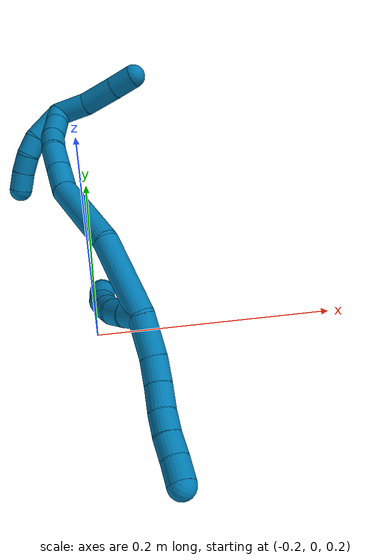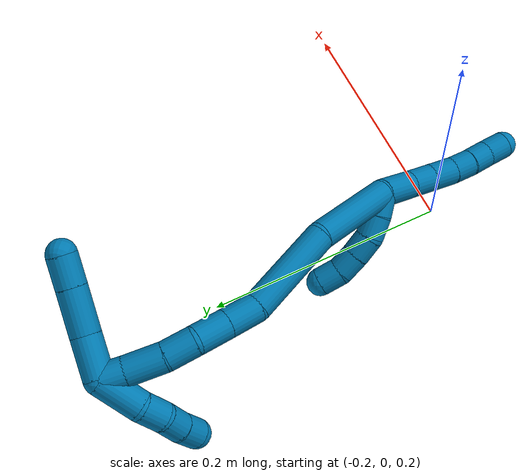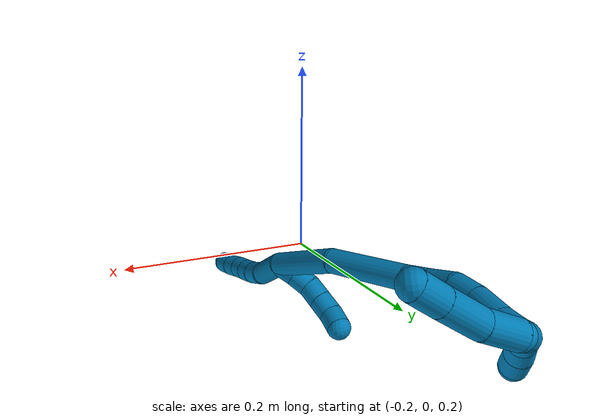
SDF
<sdf version="1.7">
 <world name="default">
  <model name="9">
   <static>0</static>
   <link name="9">
    <collision name="collision-cylinder-e_1_2_8">
     <pose>-0.006853 -0.011613 -0.014226 2.45698 -0.357152 -0.937743</pose>
     <geometry><cylinder><radius>0.0125</radius><length>0.039202</length></cylinder></geometry>
     <surface>
      <friction><ode><mu>1.16</mu><mu2>1.16</mu2><slip1>0</slip1><slip2>0</slip2></ode></friction>
      <contact><ode><kp>1e+06</kp><kd>1</kd><max_vel>0</max_vel><min_depth>0.001</min_depth></ode></contact>
     </surface>
    </collision>
    <visual name="visual-cylinder-e_1_2_8">
     <pose>-0.006853 -0.011613 -0.014226 2.45698 -0.357152 -0.937743</pose>
     <geometry><cylinder><radius>0.0125</radius><length>0.039202</length></cylinder></geometry>
     <material><ambient>0 0.490196 0.709804 1</ambient></material>
    </visual>
    <collision name="collision-cylinder-e_2_8_9">
     <pose>-0.015113 -0.032586 -0.036569 2.28513 -0.113104 -0.246778</pose>
     <geometry><cylinder><radius>0.0125</radius><length>0.024938</length></cylinder></geometry>
     <surface>
      <friction><ode><mu>1.16</mu><mu2>1.16</mu2><slip1>0</slip1><slip2>0</slip2></ode></friction>
      <contact><ode><kp>1e+06</kp><kd>1</kd><max_vel>0</max_vel><min_depth>0.001</min_depth></ode></contact>
     </surface>
    </collision>
    <visual name="visual-cylinder-e_2_8_9">
     <pose>-0.015113 -0.032586 -0.036569 2.28513 -0.113104 -0.246778</pose>
     <geometry><cylinder><radius>0.0125</radius><length>0.024938</length></cylinder></geometry>
     <material><ambient>0 0.490196 0.709804 1</ambient></material>
    </visual>
    <collision name="collision-cylinder-e_3_9_10">
     <pose>-0.016909 -0.051366 -0.05205 2.23441 -0.032536 -0.066722</pose>
     <geometry><cylinder><radius>0.0125</radius><length>0.023926</length></cylinder></geometry>
     <surface>
      <friction><ode><mu>1.16</mu><mu2>1.16</mu2><slip1>0</slip1><slip2>0</slip2></ode></friction>
      <contact><ode><kp>1e+06</kp><kd>1</kd><max_vel>0</max_vel><min_depth>0.001</min_depth></ode></contact>
     </surface>
    </collision>
    <visual name="visual-cylinder-e_3_9_10">
     <pose>-0.016909 -0.051366 -0.05205 2.23441 -0.032536 -0.066722</pose>
     <geometry><cylinder><radius>0.0125</radius><length>0.023926</length></cylinder></geometry>
     <material><ambient>0 0.490196 0.709804 1</ambient></material>
    </visual>
    <collision name="collision-cylinder-e_4_10_11">
     <pose>-0.016854 -0.068473 -0.066168 2.29154 0.043348 0.095714</pose>
     <geometry><cylinder><radius>0.0125</radius><length>0.020486</length></cylinder></geometry>
     <surface>
      <friction><ode><mu>1.16</mu><mu2>1.16</mu2><slip1>0</slip1><slip2>0</slip2></ode></friction>
      <contact><ode><kp>1e+06</kp><kd>1</kd><max_vel>0</max_vel><min_depth>0.001</min_depth></ode></contact>
     </surface>
    </collision>
    <visual name="visual-cylinder-e_4_10_11">
     <pose>-0.016854 -0.068473 -0.066168 2.29154 0.043348 0.095714</pose>
     <geometry><cylinder><radius>0.0125</radius><length>0.020486</length></cylinder></geometry>
     <material><ambient>0 0.490196 0.709804 1</ambient></material>
    </visual>
    <collision name="collision-cylinder-e_5_11_12">
     <pose>-0.01616 -0.082999 -0.080217 2.38861 0.025053 0.06335</pose>
     <geometry><cylinder><radius>0.0125</radius><length>0.020005</length></cylinder></geometry>
     <surface>
      <friction><ode><mu>1.16</mu><mu2>1.16</mu2><slip1>0</slip1><slip2>0</slip2></ode></friction>
      <contact><ode><kp>1e+06</kp><kd>1</kd><max_vel>0</max_vel><min_depth>0.001</min_depth></ode></contact>
     </surface>
    </collision>
    <visual name="visual-cylinder-e_5_11_12">
     <pose>-0.01616 -0.082999 -0.080217 2.38861 0.025053 0.06335</pose>
     <geometry><cylinder><radius>0.0125</radius><length>0.020005</length></cylinder></geometry>
     <material><ambient>0 0.490196 0.709804 1</ambient></material>
    </visual>
    <collision name="collision-cylinder-e_6_12_6">
     <pose>-0.015035 -0.09756 -0.0949 2.33392 0.081613 0.190513</pose>
     <geometry><cylinder><radius>0.0125</radius><length>0.021443</length></cylinder></geometry>
     <surface>
      <friction><ode><mu>1.16</mu><mu2>1.16</mu2><slip1>0</slip1><slip2>0</slip2></ode></friction>
      <contact><ode><kp>1e+06</kp><kd>1</kd><max_vel>0</max_vel><min_depth>0.001</min_depth></ode></contact>
     </surface>
    </collision>
    <visual name="visual-cylinder-e_6_12_6">
     <pose>-0.015035 -0.09756 -0.0949 2.33392 0.081613 0.190513</pose>
     <geometry><cylinder><radius>0.0125</radius><length>0.021443</length></cylinder></geometry>
     <material><ambient>0 0.490196 0.709804 1</ambient></material>
    </visual>
    <collision name="collision-cylinder-e_1_2_13">
     <pose>-0.006621 0.000152 0.007492 -0.02024 -0.723643 0.007661</pose>
     <geometry><cylinder><radius>0.0125</radius><length>0.02</length></cylinder></geometry>
     <surface>
      <friction><ode><mu>1.16</mu><mu2>1.16</mu2><slip1>0</slip1><slip2>0</slip2></ode></friction>
      <contact><ode><kp>1e+06</kp><kd>1</kd><max_vel>0</max_vel><min_depth>0.001</min_depth></ode></contact>
     </surface>
    </collision>
    <visual name="visual-cylinder-e_1_2_13">
     <pose>-0.006621 0.000152 0.007492 -0.02024 -0.723643 0.007661</pose>
     <geometry><cylinder><radius>0.0125</radius><length>0.02</length></cylinder></geometry>
     <material><ambient>0 0.490196 0.709804 1</ambient></material>
    </visual>
    <collision name="collision-cylinder-e_2_13_14">
     <pose>-0.020058 0.001821 0.022143 -0.208863 -0.74991 0.082457</pose>
     <geometry><cylinder><radius>0.0125</radius><length>0.02</length></cylinder></geometry>
     <surface>
      <friction><ode><mu>1.16</mu><mu2>1.16</mu2><slip1>0</slip1><slip2>0</slip2></ode></friction>
      <contact><ode><kp>1e+06</kp><kd>1</kd><max_vel>0</max_vel><min_depth>0.001</min_depth></ode></contact>
     </surface>
    </collision>
    <visual name="visual-cylinder-e_2_13_14">
     <pose>-0.020058 0.001821 0.022143 -0.208863 -0.74991 0.082457</pose>
     <geometry><cylinder><radius>0.0125</radius><length>0.02</length></cylinder></geometry>
     <material><ambient>0 0.490196 0.709804 1</ambient></material>
    </visual>
    <collision name="collision-cylinder-e_3_14_15">
     <pose>-0.033984 0.007666 0.034844 -0.663 -0.790966 0.28544</pose>
     <geometry><cylinder><radius>0.0125</radius><length>0.02</length></cylinder></geometry>
     <surface>
      <friction><ode><mu>1.16</mu><mu2>1.16</mu2><slip1>0</slip1><slip2>0</slip2></ode></friction>
      <contact><ode><kp>1e+06</kp><kd>1</kd><max_vel>0</max_vel><min_depth>0.001</min_depth></ode></contact>
     </surface>
    </collision>
    <visual name="visual-cylinder-e_3_14_15">
     <pose>-0.033984 0.007666 0.034844 -0.663 -0.790966 0.28544</pose>
     <geometry><cylinder><radius>0.0125</radius><length>0.02</length></cylinder></geometry>
     <material><ambient>0 0.490196 0.709804 1</ambient></material>
    </visual>
    <collision name="collision-cylinder-e_4_15_16">
     <pose>-0.047658 0.01713 0.045911 -0.748899 -0.71603 0.291974</pose>
     <geometry><cylinder><radius>0.0125</radius><length>0.02</length></cylinder></geometry>
     <surface>
      <friction><ode><mu>1.16</mu><mu2>1.16</mu2><slip1>0</slip1><slip2>0</slip2></ode></friction>
      <contact><ode><kp>1e+06</kp><kd>1</kd><max_vel>0</max_vel><min_depth>0.001</min_depth></ode></contact>
     </surface>
    </collision>
    <visual name="visual-cylinder-e_4_15_16">
     <pose>-0.047658 0.01713 0.045911 -0.748899 -0.71603 0.291974</pose>
     <geometry><cylinder><radius>0.0125</radius><length>0.02</length></cylinder></geometry>
     <material><ambient>0 0.490196 0.709804 1</ambient></material>
    </visual>
    <collision name="collision-cylinder-e_5_16_5">
     <pose>-0.059128 0.02981 0.055799 -1.04655 -0.51275 0.300195</pose>
     <geometry><cylinder><radius>0.0125</radius><length>0.02</length></cylinder></geometry>
     <surface>
      <friction><ode><mu>1.16</mu><mu2>1.16</mu2><slip1>0</slip1><slip2>0</slip2></ode></friction>
      <contact><ode><kp>1e+06</kp><kd>1</kd><max_vel>0</max_vel><min_depth>0.001</min_depth></ode></contact>
     </surface>
    </collision>
    <visual name="visual-cylinder-e_5_16_5">
     <pose>-0.059128 0.02981 0.055799 -1.04655 -0.51275 0.300195</pose>
     <geometry><cylinder><radius>0.0125</radius><length>0.02</length></cylinder></geometry>
     <material><ambient>0 0.490196 0.709804 1</ambient></material>
    </visual>
    <collision name="collision-cylinder-e_1_2_17">
     <pose>0.004078 0.022598 0.033554 -0.5927 0.100466 -0.0307</pose>
     <geometry><cylinder><radius>0.0125</radius><length>0.081318</length></cylinder></geometry>
     <surface>
      <friction><ode><mu>1.16</mu><mu2>1.16</mu2><slip1>0</slip1><slip2>0</slip2></ode></friction>
      <contact><ode><kp>1e+06</kp><kd>1</kd><max_vel>0</max_vel><min_depth>0.001</min_depth></ode></contact>
     </surface>
    </collision>
    <visual name="visual-cylinder-e_1_2_17">
     <pose>0.004078 0.022598 0.033554 -0.5927 0.100466 -0.0307</pose>
     <geometry><cylinder><radius>0.0125</radius><length>0.081318</length></cylinder></geometry>
     <material><ambient>0 0.490196 0.709804 1</ambient></material>
    </visual>
    <collision name="collision-cylinder-e_2_17_18">
     <pose>0.000768 0.064373 0.103217 -0.488217 -0.178771 0.044639</pose>
     <geometry><cylinder><radius>0.0125</radius><length>0.083096</length></cylinder></geometry>
     <surface>
      <friction><ode><mu>1.16</mu><mu2>1.16</mu2><slip1>0</slip1><slip2>0</slip2></ode></friction>
      <contact><ode><kp>1e+06</kp><kd>1</kd><max_vel>0</max_vel><min_depth>0.001</min_depth></ode></contact>
     </surface>
    </collision>
    <visual name="visual-cylinder-e_2_17_18">
     <pose>0.000768 0.064373 0.103217 -0.488217 -0.178771 0.044639</pose>
     <geometry><cylinder><radius>0.0125</radius><length>0.083096</length></cylinder></geometry>
     <material><ambient>0 0.490196 0.709804 1</ambient></material>
    </visual>
    <collision name="collision-cylinder-e_3_18_19">
     <pose>-0.006852 0.093504 0.14972 -0.763778 -0.016109 0.00647</pose>
     <geometry><cylinder><radius>0.0125</radius><length>0.028785</length></cylinder></geometry>
     <surface>
      <friction><ode><mu>1.16</mu><mu2>1.16</mu2><slip1>0</slip1><slip2>0</slip2></ode></friction>
      <contact><ode><kp>1e+06</kp><kd>1</kd><max_vel>0</max_vel><min_depth>0.001</min_depth></ode></contact>
     </surface>
    </collision>
    <visual name="visual-cylinder-e_3_18_19">
     <pose>-0.006852 0.093504 0.14972 -0.763778 -0.016109 0.00647</pose>
     <geometry><cylinder><radius>0.0125</radius><length>0.028785</length></cylinder></geometry>
     <material><ambient>0 0.490196 0.709804 1</ambient></material>
    </visual>
    <collision name="collision-cylinder-e_4_19_20">
     <pose>-0.006893 0.113264 0.170418 -0.760631 0.013404 -0.005359</pose>
     <geometry><cylinder><radius>0.0125</radius><length>0.028453</length></cylinder></geometry>
     <surface>
      <friction><ode><mu>1.16</mu><mu2>1.16</mu2><slip1>0</slip1><slip2>0</slip2></ode></friction>
      <contact><ode><kp>1e+06</kp><kd>1</kd><max_vel>0</max_vel><min_depth>0.001</min_depth></ode></contact>
     </surface>
    </collision>
    <visual name="visual-cylinder-e_4_19_20">
     <pose>-0.006893 0.113264 0.170418 -0.760631 0.013404 -0.005359</pose>
     <geometry><cylinder><radius>0.0125</radius><length>0.028453</length></cylinder></geometry>
     <material><ambient>0 0.490196 0.709804 1</ambient></material>
    </visual>
    <collision name="collision-cylinder-e_5_20_21">
     <pose>-0.010081 0.132844 0.188242 -0.914972 -0.267408 0.132248</pose>
     <geometry><cylinder><radius>0.0125</radius><length>0.025571</length></cylinder></geometry>
     <surface>
      <friction><ode><mu>1.16</mu><mu2>1.16</mu2><slip1>0</slip1><slip2>0</slip2></ode></friction>
      <contact><ode><kp>1e+06</kp><kd>1</kd><max_vel>0</max_vel><min_depth>0.001</min_depth></ode></contact>
     </surface>
    </collision>
    <visual name="visual-cylinder-e_5_20_21">
     <pose>-0.010081 0.132844 0.188242 -0.914972 -0.267408 0.132248</pose>
     <geometry><cylinder><radius>0.0125</radius><length>0.025571</length></cylinder></geometry>
     <material><ambient>0 0.490196 0.709804 1</ambient></material>
    </visual>
    <collision name="collision-cylinder-e_6_21_22">
     <pose>-0.017986 0.156448 0.202992 -1.08916 -0.282338 0.171726</pose>
     <geometry><cylinder><radius>0.0125</radius><length>0.032501</length></cylinder></geometry>
     <surface>
      <friction><ode><mu>1.16</mu><mu2>1.16</mu2><slip1>0</slip1><slip2>0</slip2></ode></friction>
      <contact><ode><kp>1e+06</kp><kd>1</kd><max_vel>0</max_vel><min_depth>0.001</min_depth></ode></contact>
     </surface>
    </collision>
    <visual name="visual-cylinder-e_6_21_22">
     <pose>-0.017986 0.156448 0.202992 -1.08916 -0.282338 0.171726</pose>
     <geometry><cylinder><radius>0.0125</radius><length>0.032501</length></cylinder></geometry>
     <material><ambient>0 0.490196 0.709804 1</ambient></material>
    </visual>
    <collision name="collision-cylinder-e_7_22_1">
     <pose>-0.024369 0.179077 0.214905 -1.08156 -0.184028 0.110707</pose>
     <geometry><cylinder><radius>0.0125</radius><length>0.020276</length></cylinder></geometry>
     <surface>
      <friction><ode><mu>1.16</mu><mu2>1.16</mu2><slip1>0</slip1><slip2>0</slip2></ode></friction>
      <contact><ode><kp>1e+06</kp><kd>1</kd><max_vel>0</max_vel><min_depth>0.001</min_depth></ode></contact>
     </surface>
    </collision>
    <visual name="visual-cylinder-e_7_22_1">
     <pose>-0.024369 0.179077 0.214905 -1.08156 -0.184028 0.110707</pose>
     <geometry><cylinder><radius>0.0125</radius><length>0.020276</length></cylinder></geometry>
     <material><ambient>0 0.490196 0.709804 1</ambient></material>
    </visual>
    <collision name="collision-cylinder-e_1_1_23">
     <pose>-0.017445 0.196613 0.206885 -2.5391 0.517605 -1.41138</pose>
     <geometry><cylinder><radius>0.0125</radius><length>0.035487</length></cylinder></geometry>
     <surface>
      <friction><ode><mu>1.16</mu><mu2>1.16</mu2><slip1>0</slip1><slip2>0</slip2></ode></friction>
      <contact><ode><kp>1e+06</kp><kd>1</kd><max_vel>0</max_vel><min_depth>0.001</min_depth></ode></contact>
     </surface>
    </collision>
    <visual name="visual-cylinder-e_1_1_23">
     <pose>-0.017445 0.196613 0.206885 -2.5391 0.517605 -1.41138</pose>
     <geometry><cylinder><radius>0.0125</radius><length>0.035487</length></cylinder></geometry>
     <material><ambient>0 0.490196 0.709804 1</ambient></material>
    </visual>
    <collision name="collision-cylinder-e_2_23_24">
     <pose>0.003804 0.213934 0.182225 -2.51892 0.702877 -1.70093</pose>
     <geometry><cylinder><radius>0.0125</radius><length>0.038579</length></cylinder></geometry>
     <surface>
      <friction><ode><mu>1.16</mu><mu2>1.16</mu2><slip1>0</slip1><slip2>0</slip2></ode></friction>
      <contact><ode><kp>1e+06</kp><kd>1</kd><max_vel>0</max_vel><min_depth>0.001</min_depth></ode></contact>
     </surface>
    </collision>
    <visual name="visual-cylinder-e_2_23_24">
     <pose>0.003804 0.213934 0.182225 -2.51892 0.702877 -1.70093</pose>
     <geometry><cylinder><radius>0.0125</radius><length>0.038579</length></cylinder></geometry>
     <material><ambient>0 0.490196 0.709804 1</ambient></material>
    </visual>
    <collision name="collision-cylinder-e_3_24_4">
     <pose>0.024844 0.228278 0.162427 -2.50807 0.722099 -1.71177</pose>
     <geometry><cylinder><radius>0.0125</radius><length>0.025934</length></cylinder></geometry>
     <surface>
      <friction><ode><mu>1.16</mu><mu2>1.16</mu2><slip1>0</slip1><slip2>0</slip2></ode></friction>
      <contact><ode><kp>1e+06</kp><kd>1</kd><max_vel>0</max_vel><min_depth>0.001</min_depth></ode></contact>
     </surface>
    </collision>
    <visual name="visual-cylinder-e_3_24_4">
     <pose>0.024844 0.228278 0.162427 -2.50807 0.722099 -1.71177</pose>
     <geometry><cylinder><radius>0.0125</radius><length>0.025934</length></cylinder></geometry>
     <material><ambient>0 0.490196 0.709804 1</ambient></material>
    </visual>
    <collision name="collision-cylinder-e_1_1_25">
     <pose>-0.03399 0.1709 0.222997 1.37264 -0.421634 -0.347072</pose>
     <geometry><cylinder><radius>0.0125</radius><length>0.03795</length></cylinder></geometry>
     <surface>
      <friction><ode><mu>1.16</mu><mu2>1.16</mu2><slip1>0</slip1><slip2>0</slip2></ode></friction>
      <contact><ode><kp>1e+06</kp><kd>1</kd><max_vel>0</max_vel><min_depth>0.001</min_depth></ode></contact>
     </surface>
    </collision>
    <visual name="visual-cylinder-e_1_1_25">
     <pose>-0.03399 0.1709 0.222997 1.37264 -0.421634 -0.347072</pose>
     <geometry><cylinder><radius>0.0125</radius><length>0.03795</length></cylinder></geometry>
     <material><ambient>0 0.490196 0.709804 1</ambient></material>
    </visual>
    <collision name="collision-cylinder-e_2_25_26">
     <pose>-0.047899 0.145289 0.225715 1.65056 -0.616798 -0.664507</pose>
     <geometry><cylinder><radius>0.0125</radius><length>0.021244</length></cylinder></geometry>
     <surface>
      <friction><ode><mu>1.16</mu><mu2>1.16</mu2><slip1>0</slip1><slip2>0</slip2></ode></friction>
      <contact><ode><kp>1e+06</kp><kd>1</kd><max_vel>0</max_vel><min_depth>0.001</min_depth></ode></contact>
     </surface>
    </collision>
    <visual name="visual-cylinder-e_2_25_26">
     <pose>-0.047899 0.145289 0.225715 1.65056 -0.616798 -0.664507</pose>
     <geometry><cylinder><radius>0.0125</radius><length>0.021244</length></cylinder></geometry>
     <material><ambient>0 0.490196 0.709804 1</ambient></material>
    </visual>
    <collision name="collision-cylinder-e_3_26_27">
     <pose>-0.061904 0.130327 0.223734 1.77209 -0.883328 -1.04973</pose>
     <geometry><cylinder><radius>0.0125</radius><length>0.020343</length></cylinder></geometry>
     <surface>
      <friction><ode><mu>1.16</mu><mu2>1.16</mu2><slip1>0</slip1><slip2>0</slip2></ode></friction>
      <contact><ode><kp>1e+06</kp><kd>1</kd><max_vel>0</max_vel><min_depth>0.001</min_depth></ode></contact>
     </surface>
    </collision>
    <visual name="visual-cylinder-e_3_26_27">
     <pose>-0.061904 0.130327 0.223734 1.77209 -0.883328 -1.04973</pose>
     <geometry><cylinder><radius>0.0125</radius><length>0.020343</length></cylinder></geometry>
     <material><ambient>0 0.490196 0.709804 1</ambient></material>
    </visual>
    <collision name="collision-cylinder-e_4_27_3">
     <pose>-0.07748 0.117794 0.219872 1.96341 -0.854173 -1.19578</pose>
     <geometry><cylinder><radius>0.0125</radius><length>0.020463</length></cylinder></geometry>
     <surface>
      <friction><ode><mu>1.16</mu><mu2>1.16</mu2><slip1>0</slip1><slip2>0</slip2></ode></friction>
      <contact><ode><kp>1e+06</kp><kd>1</kd><max_vel>0</max_vel><min_depth>0.001</min_depth></ode></contact>
     </surface>
    </collision>
    <visual name="visual-cylinder-e_4_27_3">
     <pose>-0.07748 0.117794 0.219872 1.96341 -0.854173 -1.19578</pose>
     <geometry><cylinder><radius>0.0125</radius><length>0.020463</length></cylinder></geometry>
     <material><ambient>0 0.490196 0.709804 1</ambient></material>
    </visual>
    <collision name="collision-sphere-3">
     <pose>-0.085195 0.111585 0.217301 0 -0 0</pose>
     <geometry><sphere><radius>0.0125</radius></sphere></geometry>
     <surface>
      <friction><ode><mu>1.16</mu><mu2>1.16</mu2><slip1>0</slip1><slip2>0</slip2></ode></friction>
      <contact><ode><kp>1e+06</kp><kd>1</kd><max_vel>0</max_vel><min_depth>0.001</min_depth></ode></contact>
     </surface>
    </collision>
    <visual name="visual-sphere-3">
     <pose>-0.085195 0.111585 0.217301 0 -0 0</pose>
     <geometry><sphere><radius>0.0125</radius></sphere></geometry>
     <material><ambient>0 0.490196 0.709804 1</ambient></material>
    </visual>
    <collision name="collision-sphere-27">
     <pose>-0.069766 0.124003 0.222444 0 -0 0</pose>
     <geometry><sphere><radius>0.0125</radius></sphere></geometry>
     <surface>
      <friction><ode><mu>1.16</mu><mu2>1.16</mu2><slip1>0</slip1><slip2>0</slip2></ode></friction>
      <contact><ode><kp>1e+06</kp><kd>1</kd><max_vel>0</max_vel><min_depth>0.001</min_depth></ode></contact>
     </surface>
    </collision>
    <visual name="visual-sphere-27">
     <pose>-0.069766 0.124003 0.222444 0 -0 0</pose>
     <geometry><sphere><radius>0.0125</radius></sphere></geometry>
     <material><ambient>0 0.490196 0.709804 1</ambient></material>
    </visual>
    <collision name="collision-sphere-26">
     <pose>-0.054043 0.136652 0.225025 0 -0 0</pose>
     <geometry><sphere><radius>0.0125</radius></sphere></geometry>
     <surface>
      <friction><ode><mu>1.16</mu><mu2>1.16</mu2><slip1>0</slip1><slip2>0</slip2></ode></friction>
      <contact><ode><kp>1e+06</kp><kd>1</kd><max_vel>0</max_vel><min_depth>0.001</min_depth></ode></contact>
     </surface>
    </collision>
    <visual name="visual-sphere-26">
     <pose>-0.054043 0.136652 0.225025 0 -0 0</pose>
     <geometry><sphere><radius>0.0125</radius></sphere></geometry>
     <material><ambient>0 0.490196 0.709804 1</ambient></material>
    </visual>
    <collision name="collision-sphere-25">
     <pose>-0.041755 0.153926 0.226406 0 -0 0</pose>
     <geometry><sphere><radius>0.0125</radius></sphere></geometry>
     <surface>
      <friction><ode><mu>1.16</mu><mu2>1.16</mu2><slip1>0</slip1><slip2>0</slip2></ode></friction>
      <contact><ode><kp>1e+06</kp><kd>1</kd><max_vel>0</max_vel><min_depth>0.001</min_depth></ode></contact>
     </surface>
    </collision>
    <visual name="visual-sphere-25">
     <pose>-0.041755 0.153926 0.226406 0 -0 0</pose>
     <geometry><sphere><radius>0.0125</radius></sphere></geometry>
     <material><ambient>0 0.490196 0.709804 1</ambient></material>
    </visual>
    <collision name="collision-sphere-4">
     <pose>0.033414 0.234039 0.154585 0 -0 0</pose>
     <geometry><sphere><radius>0.0125</radius></sphere></geometry>
     <surface>
      <friction><ode><mu>1.16</mu><mu2>1.16</mu2><slip1>0</slip1><slip2>0</slip2></ode></friction>
      <contact><ode><kp>1e+06</kp><kd>1</kd><max_vel>0</max_vel><min_depth>0.001</min_depth></ode></contact>
     </surface>
    </collision>
    <visual name="visual-sphere-4">
     <pose>0.033414 0.234039 0.154585 0 -0 0</pose>
     <geometry><sphere><radius>0.0125</radius></sphere></geometry>
     <material><ambient>0 0.490196 0.709804 1</ambient></material>
    </visual>
    <collision name="collision-sphere-24">
     <pose>0.016273 0.222518 0.17027 0 -0 0</pose>
     <geometry><sphere><radius>0.0125</radius></sphere></geometry>
     <surface>
      <friction><ode><mu>1.16</mu><mu2>1.16</mu2><slip1>0</slip1><slip2>0</slip2></ode></friction>
      <contact><ode><kp>1e+06</kp><kd>1</kd><max_vel>0</max_vel><min_depth>0.001</min_depth></ode></contact>
     </surface>
    </collision>
    <visual name="visual-sphere-24">
     <pose>0.016273 0.222518 0.17027 0 -0 0</pose>
     <geometry><sphere><radius>0.0125</radius></sphere></geometry>
     <material><ambient>0 0.490196 0.709804 1</ambient></material>
    </visual>
    <collision name="collision-sphere-23">
     <pose>-0.008665 0.205351 0.194181 0 -0 0</pose>
     <geometry><sphere><radius>0.0125</radius></sphere></geometry>
     <surface>
      <friction><ode><mu>1.16</mu><mu2>1.16</mu2><slip1>0</slip1><slip2>0</slip2></ode></friction>
      <contact><ode><kp>1e+06</kp><kd>1</kd><max_vel>0</max_vel><min_depth>0.001</min_depth></ode></contact>
     </surface>
    </collision>
    <visual name="visual-sphere-23">
     <pose>-0.008665 0.205351 0.194181 0 -0 0</pose>
     <geometry><sphere><radius>0.0125</radius></sphere></geometry>
     <material><ambient>0 0.490196 0.709804 1</ambient></material>
    </visual>
    <collision name="collision-sphere-1">
     <pose>-0.026224 0.187875 0.219589 0 -0 0</pose>
     <geometry><sphere><radius>0.0125</radius></sphere></geometry>
     <surface>
      <friction><ode><mu>1.16</mu><mu2>1.16</mu2><slip1>0</slip1><slip2>0</slip2></ode></friction>
      <contact><ode><kp>1e+06</kp><kd>1</kd><max_vel>0</max_vel><min_depth>0.001</min_depth></ode></contact>
     </surface>
    </collision>
    <visual name="visual-sphere-1">
     <pose>-0.026224 0.187875 0.219589 0 -0 0</pose>
     <geometry><sphere><radius>0.0125</radius></sphere></geometry>
     <material><ambient>0 0.490196 0.709804 1</ambient></material>
    </visual>
    <collision name="collision-sphere-22">
     <pose>-0.022514 0.170279 0.210221 0 -0 0</pose>
     <geometry><sphere><radius>0.0125</radius></sphere></geometry>
     <surface>
      <friction><ode><mu>1.16</mu><mu2>1.16</mu2><slip1>0</slip1><slip2>0</slip2></ode></friction>
      <contact><ode><kp>1e+06</kp><kd>1</kd><max_vel>0</max_vel><min_depth>0.001</min_depth></ode></contact>
     </surface>
    </collision>
    <visual name="visual-sphere-22">
     <pose>-0.022514 0.170279 0.210221 0 -0 0</pose>
     <geometry><sphere><radius>0.0125</radius></sphere></geometry>
     <material><ambient>0 0.490196 0.709804 1</ambient></material>
    </visual>
    <collision name="collision-sphere-21">
     <pose>-0.013459 0.142616 0.195762 0 -0 0</pose>
     <geometry><sphere><radius>0.0125</radius></sphere></geometry>
     <surface>
      <friction><ode><mu>1.16</mu><mu2>1.16</mu2><slip1>0</slip1><slip2>0</slip2></ode></friction>
      <contact><ode><kp>1e+06</kp><kd>1</kd><max_vel>0</max_vel><min_depth>0.001</min_depth></ode></contact>
     </surface>
    </collision>
    <visual name="visual-sphere-21">
     <pose>-0.013459 0.142616 0.195762 0 -0 0</pose>
     <geometry><sphere><radius>0.0125</radius></sphere></geometry>
     <material><ambient>0 0.490196 0.709804 1</ambient></material>
    </visual>
    <collision name="collision-sphere-12">
     <pose>-0.015909 -0.089837 -0.087514 0 -0 0</pose>
     <geometry><sphere><radius>0.0125</radius></sphere></geometry>
     <surface>
      <friction><ode><mu>1.16</mu><mu2>1.16</mu2><slip1>0</slip1><slip2>0</slip2></ode></friction>
      <contact><ode><kp>1e+06</kp><kd>1</kd><max_vel>0</max_vel><min_depth>0.001</min_depth></ode></contact>
     </surface>
    </collision>
    <visual name="visual-sphere-12">
     <pose>-0.015909 -0.089837 -0.087514 0 -0 0</pose>
     <geometry><sphere><radius>0.0125</radius></sphere></geometry>
     <material><ambient>0 0.490196 0.709804 1</ambient></material>
    </visual>
    <collision name="collision-sphere-11">
     <pose>-0.01641 -0.076162 -0.072921 0 -0 0</pose>
     <geometry><sphere><radius>0.0125</radius></sphere></geometry>
     <surface>
      <friction><ode><mu>1.16</mu><mu2>1.16</mu2><slip1>0</slip1><slip2>0</slip2></ode></friction>
      <contact><ode><kp>1e+06</kp><kd>1</kd><max_vel>0</max_vel><min_depth>0.001</min_depth></ode></contact>
     </surface>
    </collision>
    <visual name="visual-sphere-11">
     <pose>-0.01641 -0.076162 -0.072921 0 -0 0</pose>
     <geometry><sphere><radius>0.0125</radius></sphere></geometry>
     <material><ambient>0 0.490196 0.709804 1</ambient></material>
    </visual>
    <collision name="collision-sphere-10">
     <pose>-0.017298 -0.060785 -0.059415 0 -0 0</pose>
     <geometry><sphere><radius>0.0125</radius></sphere></geometry>
     <surface>
      <friction><ode><mu>1.16</mu><mu2>1.16</mu2><slip1>0</slip1><slip2>0</slip2></ode></friction>
      <contact><ode><kp>1e+06</kp><kd>1</kd><max_vel>0</max_vel><min_depth>0.001</min_depth></ode></contact>
     </surface>
    </collision>
    <visual name="visual-sphere-10">
     <pose>-0.017298 -0.060785 -0.059415 0 -0 0</pose>
     <geometry><sphere><radius>0.0125</radius></sphere></geometry>
     <material><ambient>0 0.490196 0.709804 1</ambient></material>
    </visual>
    <collision name="collision-sphere-9">
     <pose>-0.01652 -0.041947 -0.044685 0 -0 0</pose>
     <geometry><sphere><radius>0.0125</radius></sphere></geometry>
     <surface>
      <friction><ode><mu>1.16</mu><mu2>1.16</mu2><slip1>0</slip1><slip2>0</slip2></ode></friction>
      <contact><ode><kp>1e+06</kp><kd>1</kd><max_vel>0</max_vel><min_depth>0.001</min_depth></ode></contact>
     </surface>
    </collision>
    <visual name="visual-sphere-9">
     <pose>-0.01652 -0.041947 -0.044685 0 -0 0</pose>
     <geometry><sphere><radius>0.0125</radius></sphere></geometry>
     <material><ambient>0 0.490196 0.709804 1</ambient></material>
    </visual>
    <collision name="collision-sphere-2">
     <geometry><sphere><radius>0.0125</radius></sphere></geometry>
     <surface>
      <friction><ode><mu>1.16</mu><mu2>1.16</mu2><slip1>0</slip1><slip2>0</slip2></ode></friction>
      <contact><ode><kp>1e+06</kp><kd>1</kd><max_vel>0</max_vel><min_depth>0.001</min_depth></ode></contact>
     </surface>
    </collision>
    <visual name="visual-sphere-2">
     <geometry><sphere><radius>0.0125</radius></sphere></geometry>
     <material><ambient>0 0.490196 0.709804 1</ambient></material>
    </visual>
    <collision name="collision-sphere-19">
     <pose>-0.007084 0.103457 0.160113 0 -0 0</pose>
     <geometry><sphere><radius>0.0125</radius></sphere></geometry>
     <surface>
      <friction><ode><mu>1.16</mu><mu2>1.16</mu2><slip1>0</slip1><slip2>0</slip2></ode></friction>
      <contact><ode><kp>1e+06</kp><kd>1</kd><max_vel>0</max_vel><min_depth>0.001</min_depth></ode></contact>
     </surface>
    </collision>
    <visual name="visual-sphere-19">
     <pose>-0.007084 0.103457 0.160113 0 -0 0</pose>
     <geometry><sphere><radius>0.0125</radius></sphere></geometry>
     <material><ambient>0 0.490196 0.709804 1</ambient></material>
    </visual>
    <collision name="collision-sphere-8">
     <pose>-0.013705 -0.023226 -0.028452 0 -0 0</pose>
     <geometry><sphere><radius>0.0125</radius></sphere></geometry>
     <surface>
      <friction><ode><mu>1.16</mu><mu2>1.16</mu2><slip1>0</slip1><slip2>0</slip2></ode></friction>
      <contact><ode><kp>1e+06</kp><kd>1</kd><max_vel>0</max_vel><min_depth>0.001</min_depth></ode></contact>
     </surface>
    </collision>
    <visual name="visual-sphere-8">
     <pose>-0.013705 -0.023226 -0.028452 0 -0 0</pose>
     <geometry><sphere><radius>0.0125</radius></sphere></geometry>
     <material><ambient>0 0.490196 0.709804 1</ambient></material>
    </visual>
    <collision name="collision-sphere-6">
     <pose>-0.014161 -0.105282 -0.102285 0 -0 0</pose>
     <geometry><sphere><radius>0.0125</radius></sphere></geometry>
     <surface>
      <friction><ode><mu>1.16</mu><mu2>1.16</mu2><slip1>0</slip1><slip2>0</slip2></ode></friction>
      <contact><ode><kp>1e+06</kp><kd>1</kd><max_vel>0</max_vel><min_depth>0.001</min_depth></ode></contact>
     </surface>
    </collision>
    <visual name="visual-sphere-6">
     <pose>-0.014161 -0.105282 -0.102285 0 -0 0</pose>
     <geometry><sphere><radius>0.0125</radius></sphere></geometry>
     <material><ambient>0 0.490196 0.709804 1</ambient></material>
    </visual>
    <collision name="collision-sphere-13">
     <pose>-0.013242 0.000303 0.014985 0 -0 0</pose>
     <geometry><sphere><radius>0.0125</radius></sphere></geometry>
     <surface>
      <friction><ode><mu>1.16</mu><mu2>1.16</mu2><slip1>0</slip1><slip2>0</slip2></ode></friction>
      <contact><ode><kp>1e+06</kp><kd>1</kd><max_vel>0</max_vel><min_depth>0.001</min_depth></ode></contact>
     </surface>
    </collision>
    <visual name="visual-sphere-13">
     <pose>-0.013242 0.000303 0.014985 0 -0 0</pose>
     <geometry><sphere><radius>0.0125</radius></sphere></geometry>
     <material><ambient>0 0.490196 0.709804 1</ambient></material>
    </visual>
    <collision name="collision-sphere-14">
     <pose>-0.026874 0.003338 0.029302 0 -0 0</pose>
     <geometry><sphere><radius>0.0125</radius></sphere></geometry>
     <surface>
      <friction><ode><mu>1.16</mu><mu2>1.16</mu2><slip1>0</slip1><slip2>0</slip2></ode></friction>
      <contact><ode><kp>1e+06</kp><kd>1</kd><max_vel>0</max_vel><min_depth>0.001</min_depth></ode></contact>
     </surface>
    </collision>
    <visual name="visual-sphere-14">
     <pose>-0.026874 0.003338 0.029302 0 -0 0</pose>
     <geometry><sphere><radius>0.0125</radius></sphere></geometry>
     <material><ambient>0 0.490196 0.709804 1</ambient></material>
    </visual>
    <collision name="collision-sphere-15">
     <pose>-0.041095 0.011994 0.040386 0 -0 0</pose>
     <geometry><sphere><radius>0.0125</radius></sphere></geometry>
     <surface>
      <friction><ode><mu>1.16</mu><mu2>1.16</mu2><slip1>0</slip1><slip2>0</slip2></ode></friction>
      <contact><ode><kp>1e+06</kp><kd>1</kd><max_vel>0</max_vel><min_depth>0.001</min_depth></ode></contact>
     </surface>
    </collision>
    <visual name="visual-sphere-15">
     <pose>-0.041095 0.011994 0.040386 0 -0 0</pose>
     <geometry><sphere><radius>0.0125</radius></sphere></geometry>
     <material><ambient>0 0.490196 0.709804 1</ambient></material>
    </visual>
    <collision name="collision-sphere-16">
     <pose>-0.054222 0.022266 0.051437 0 -0 0</pose>
     <geometry><sphere><radius>0.0125</radius></sphere></geometry>
     <surface>
      <friction><ode><mu>1.16</mu><mu2>1.16</mu2><slip1>0</slip1><slip2>0</slip2></ode></friction>
      <contact><ode><kp>1e+06</kp><kd>1</kd><max_vel>0</max_vel><min_depth>0.001</min_depth></ode></contact>
     </surface>
    </collision>
    <visual name="visual-sphere-16">
     <pose>-0.054222 0.022266 0.051437 0 -0 0</pose>
     <geometry><sphere><radius>0.0125</radius></sphere></geometry>
     <material><ambient>0 0.490196 0.709804 1</ambient></material>
    </visual>
    <collision name="collision-sphere-5">
     <pose>-0.064034 0.037354 0.060161 0 -0 0</pose>
     <geometry><sphere><radius>0.0125</radius></sphere></geometry>
     <surface>
      <friction><ode><mu>1.16</mu><mu2>1.16</mu2><slip1>0</slip1><slip2>0</slip2></ode></friction>
      <contact><ode><kp>1e+06</kp><kd>1</kd><max_vel>0</max_vel><min_depth>0.001</min_depth></ode></contact>
     </surface>
    </collision>
    <visual name="visual-sphere-5">
     <pose>-0.064034 0.037354 0.060161 0 -0 0</pose>
     <geometry><sphere><radius>0.0125</radius></sphere></geometry>
     <material><ambient>0 0.490196 0.709804 1</ambient></material>
    </visual>
    <collision name="collision-sphere-17">
     <pose>0.008156 0.045196 0.067108 0 -0 0</pose>
     <geometry><sphere><radius>0.0125</radius></sphere></geometry>
     <surface>
      <friction><ode><mu>1.16</mu><mu2>1.16</mu2><slip1>0</slip1><slip2>0</slip2></ode></friction>
      <contact><ode><kp>1e+06</kp><kd>1</kd><max_vel>0</max_vel><min_depth>0.001</min_depth></ode></contact>
     </surface>
    </collision>
    <visual name="visual-sphere-17">
     <pose>0.008156 0.045196 0.067108 0 -0 0</pose>
     <geometry><sphere><radius>0.0125</radius></sphere></geometry>
     <material><ambient>0 0.490196 0.709804 1</ambient></material>
    </visual>
    <collision name="collision-sphere-18">
     <pose>-0.00662 0.083551 0.139326 0 -0 0</pose>
     <geometry><sphere><radius>0.0125</radius></sphere></geometry>
     <surface>
      <friction><ode><mu>1.16</mu><mu2>1.16</mu2><slip1>0</slip1><slip2>0</slip2></ode></friction>
      <contact><ode><kp>1e+06</kp><kd>1</kd><max_vel>0</max_vel><min_depth>0.001</min_depth></ode></contact>
     </surface>
    </collision>
    <visual name="visual-sphere-18">
     <pose>-0.00662 0.083551 0.139326 0 -0 0</pose>
     <geometry><sphere><radius>0.0125</radius></sphere></geometry>
     <material><ambient>0 0.490196 0.709804 1</ambient></material>
    </visual>
    <collision name="collision-sphere-20">
     <pose>-0.006702 0.123071 0.180723 0 -0 0</pose>
     <geometry><sphere><radius>0.0125</radius></sphere></geometry>
     <surface>
      <friction><ode><mu>1.16</mu><mu2>1.16</mu2><slip1>0</slip1><slip2>0</slip2></ode></friction>
      <contact><ode><kp>1e+06</kp><kd>1</kd><max_vel>0</max_vel><min_depth>0.001</min_depth></ode></contact>
     </surface>
    </collision>
    <visual name="visual-sphere-20">
     <pose>-0.006702 0.123071 0.180723 0 -0 0</pose>
     <geometry><sphere><radius>0.0125</radius></sphere></geometry>
     <material><ambient>0 0.490196 0.709804 1</ambient></material>
    </visual>
    <inertial>
     <pose>-0.015606 0.072637 0.096985 0 -0 0</pose>
     <mass>0.75</mass>
     <inertia>
      <ixx>0.000111</ixx>
      <ixy>0</ixy>
      <ixz>0</ixz>
      <iyy>9.1e-05</iyy>
      <iyz>0</iyz>
      <izz>-3.2e-05</izz>
     </inertia>
    </inertial>
   </link>
   <pose>-0.160912 0.025504 0.189803 0.347057 -1.3563 -0.989071</pose>
  </model>
 </world>
</sdf>
